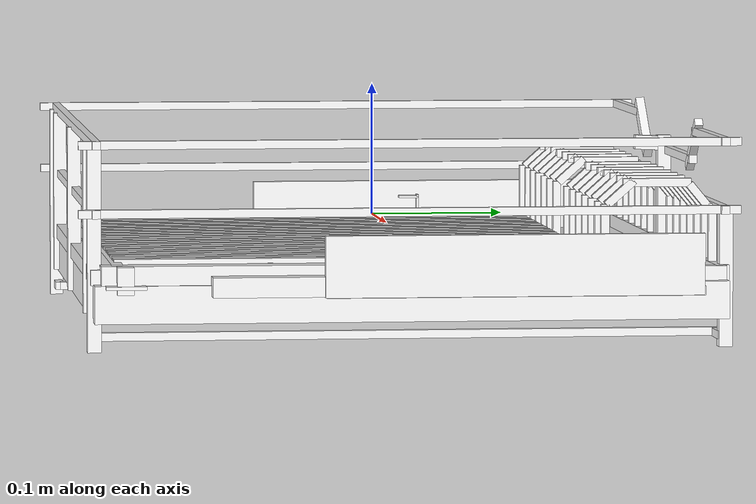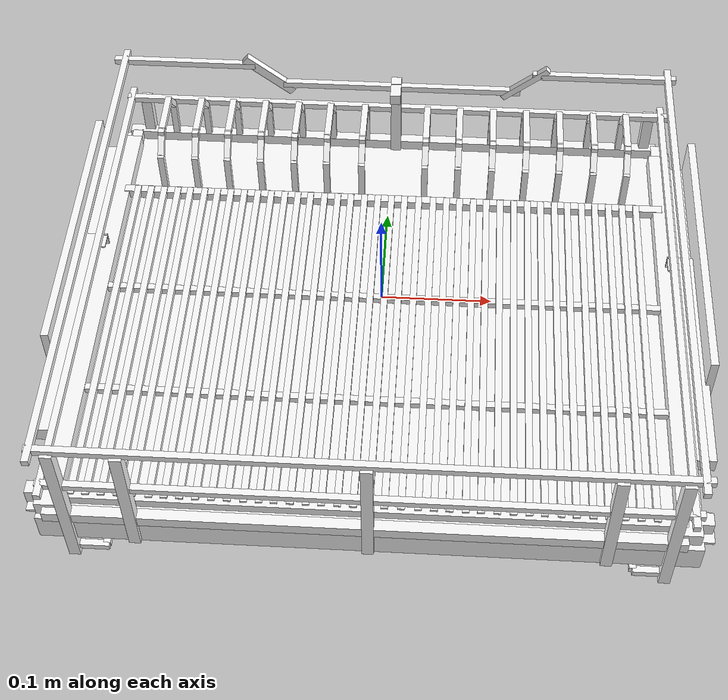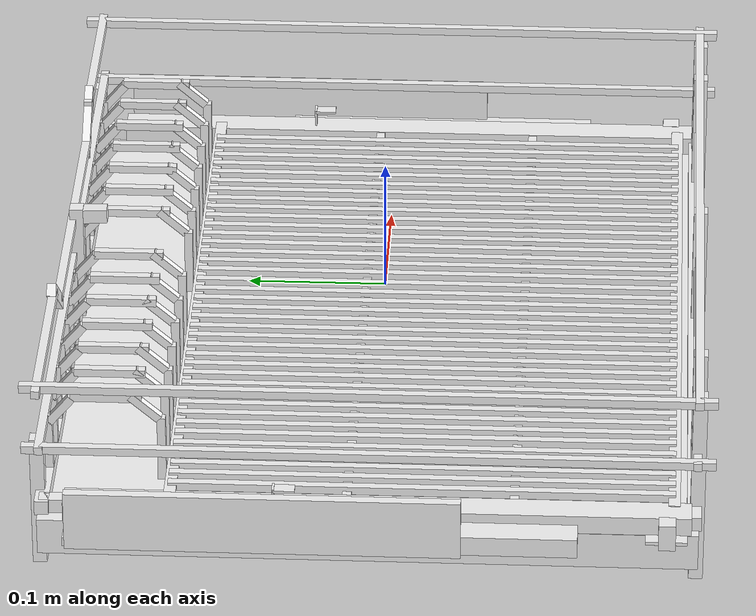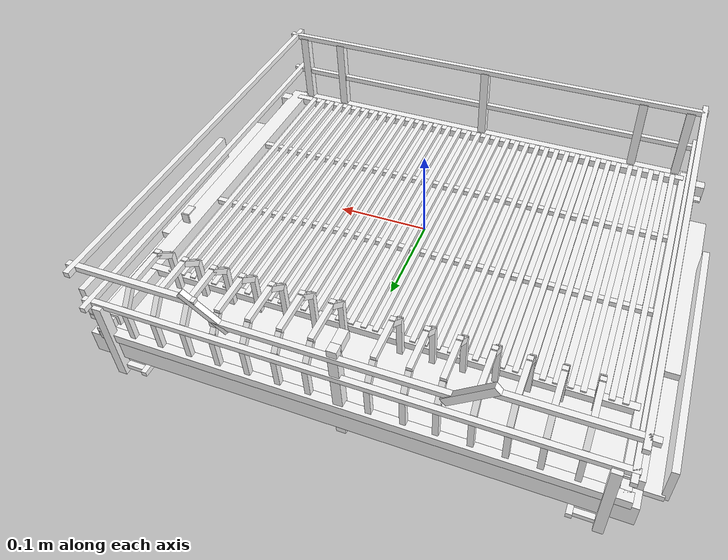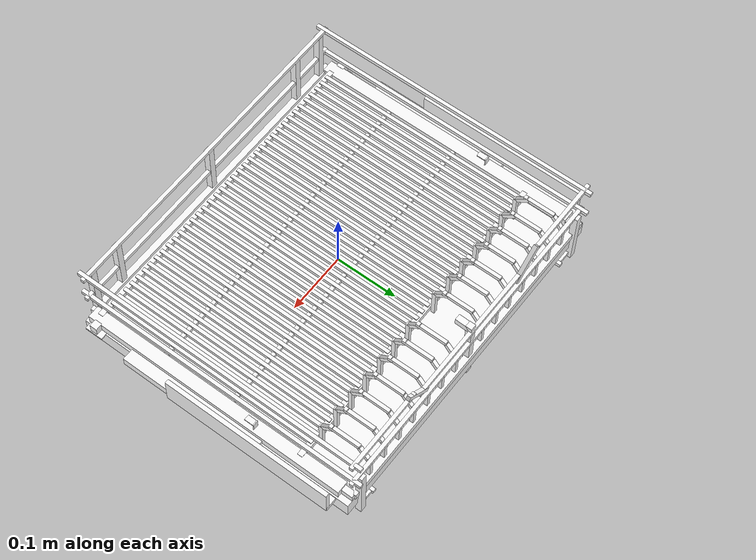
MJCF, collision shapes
<?xml version='1.0' encoding='utf-8'?>
<mujoco model="model">
  <option timestep="0.002" gravity="0.0 0.0 -9.81" />
  <compiler angle="radian" />
  <asset>
    <mesh file="visual/DishRack037.obj" name="DishRack037_vis" />
    <texture file="visual/T_BC001.png" name="DishRack037_material" type="2d" />
    <material name="DishRack037_material" rgba="1 1 1 1.0" texture="DishRack037_material" shininess="0.4472135901451111" specular="0.3103448502657381" />
  </asset>
  <default>
    <default class="visual">
      <geom conaffinity="0" contype="0" group="1" type="mesh" />
    </default>
    <default class="collision">
      <geom group="0" rgba="1 1 1 0.25" density="1.0" solref="0.004 1" solimp="0.998 0.998 0.001" />
    </default>
    <default class="spawn">
      <geom group="0" rgba="1 1 1 0.5" contype="0" conaffinity="0" />
      <site group="0" rgba="1 1 1 0.5" />
    </default>
    <default class="region">
      <geom group="1" conaffinity="0" contype="0" rgba="0 1 0 0" mass="0" />
    </default>
  </default>
  <worldbody>
    <body>
      <body name="object">
        <geom mesh="DishRack037_vis" type="mesh" solimp="0.998 0.998 0.001" solref="0.001 1" friction="0.95 0.3 0.1" class="visual" material="DishRack037_material" />
        <geom type="box" pos="0.00083649 0.00033160 -0.04484896" size="0.27948814630508423 0.2313927561044693 0.013743163086473942" quat="1.0 0.0 0.0 0.0" class="collision" />
        <geom type="box" pos="-0.26806384 -0.00639907 -0.02445450" size="0.010229474864900112 0.21969632804393768 0.007286883424967527" quat="1.0 0.0 0.0 0.0" class="collision" />
        <geom type="box" pos="0.26734287 -0.00639907 -0.02445450" size="0.010229475796222687 0.21969632804393768 0.007286883890628815" quat="1.0 0.0 0.0 0.0" class="collision" />
        <geom type="box" pos="0.28630769 -0.03140605 -0.03163406" size="0.01022955309599638 0.11538941413164139 0.007286883890628815" quat="1.0 0.0 0.0 0.0" class="collision" />
        <geom type="box" pos="-0.28737399 -0.03140605 -0.03163406" size="0.01022955309599638 0.11538941413164139 0.007286884356290102" quat="1.0 0.0 0.0 0.0" class="collision" />
        <geom type="box" pos="-0.28737399 0.07407325 -0.03634763" size="0.01022955309599638 0.1380569487810135 0.0033377723302692175" quat="1.0 0.0 0.0 0.0" class="collision" />
        <geom type="box" pos="-0.29786777 0.07226597 -0.01699529" size="0.003504582680761814 0.13805696368217468 0.02237086370587349" quat="1.0 0.0 0.0 0.0" class="collision" />
        <geom type="box" pos="0.29660746 0.07225426 -0.01699691" size="0.0035354443825781345 0.13805697858333588 0.02231604792177677" quat="1.0 0.0 0.0 0.0" class="collision" />
        <geom type="box" pos="0.28905258 0.07307146 -0.03634763" size="0.010229573585093021 0.13805699348449707 0.0033377730287611485" quat="1.0 0.0 0.0 0.0" class="collision" />
        <geom type="box" pos="0.28296769 -0.20863483 -0.03210286" size="0.0062951394356787205 0.014664098620414734 0.0012474108953028917" quat="1.0 0.0 0.0 0.0" class="collision" />
        <geom type="box" pos="0.28162846 -0.20907026 -0.02707395" size="0.005999957676976919 0.005999957676976919 0.009999999776482582" quat="1.0 0.0 0.0 0.0" class="collision" />
        <geom type="box" pos="-0.28121859 -0.20863483 -0.03210286" size="0.0062951394356787205 0.014664098620414734 0.0012474111281335354" quat="1.0 0.0 0.0 0.0" class="collision" />
        <geom type="box" pos="-0.28255781 -0.20907026 -0.02707395" size="0.0059999581426382065 0.0059999581426382065 0.009999999776482582" quat="1.0 0.0 0.0 0.0" class="collision" />
        <geom type="box" pos="-0.26980966 0.06611580 -0.01176370" size="0.004432574845850468 0.000789379351772368 0.007640306372195482" quat="1.0 0.0 0.0 0.0" class="collision" />
        <geom type="box" pos="-0.26980966 0.05860388 -0.00575532" size="0.004432688467204571 0.007643159478902817 0.000817152438685298" quat="1.0 0.0 0.0 0.0" class="collision" />
        <geom type="box" pos="0.26913095 0.05860388 -0.00575532" size="0.004432688932865858 0.007643159944564104 0.000817152438685298" quat="1.0 0.0 0.0 0.0" class="collision" />
        <geom type="box" pos="0.26913095 0.06611580 -0.01176370" size="0.00443257624283433 0.0007893794681876898 0.0076403082348406315" quat="1.0 0.0 0.0 0.0" class="collision" />
        <geom type="box" pos="0.00145421 -0.03664763 -0.01767052" size="0.003000000026077032 0.17819571495056152 0.003000067314133048" quat="1.0 0.0 0.0 0.0" class="collision" />
        <geom type="box" pos="-0.01181835 -0.03664763 -0.01767052" size="0.003000000026077032 0.17819571495056152 0.0030000668484717607" quat="1.0 0.0 0.0 0.0" class="collision" />
        <geom type="box" pos="-0.02501403 -0.03664763 -0.01767052" size="0.003000000026077032 0.17819571495056152 0.0030000663828104734" quat="1.0 0.0 0.0 0.0" class="collision" />
        <geom type="box" pos="-0.03850293 -0.03664763 -0.01767052" size="0.003000000026077032 0.17819571495056152 0.00300006614997983" quat="1.0 0.0 0.0 0.0" class="collision" />
        <geom type="box" pos="-0.05129403 -0.03664763 -0.01767052" size="0.003000000026077032 0.17819571495056152 0.0030000656843185425" quat="1.0 0.0 0.0 0.0" class="collision" />
        <geom type="box" pos="-0.06444175 -0.03664763 -0.01767052" size="0.003000000026077032 0.17819571495056152 0.003000065451487899" quat="1.0 0.0 0.0 0.0" class="collision" />
        <geom type="box" pos="-0.07820591 -0.03664763 -0.01767052" size="0.003000000026077032 0.17819571495056152 0.0030000649858266115" quat="1.0 0.0 0.0 0.0" class="collision" />
        <geom type="box" pos="-0.09067434 -0.03664763 -0.01767052" size="0.003000000026077032 0.17819571495056152 0.003000064520165324" quat="1.0 0.0 0.0 0.0" class="collision" />
        <geom type="box" pos="-0.10363314 -0.03664763 -0.01767052" size="0.003000000026077032 0.17819571495056152 0.0030000642873346806" quat="1.0 0.0 0.0 0.0" class="collision" />
        <geom type="box" pos="-0.11715781 -0.03664763 -0.01767052" size="0.003000000026077032 0.17819571495056152 0.0030000638216733932" quat="1.0 0.0 0.0 0.0" class="collision" />
        <geom type="box" pos="-0.13048746 -0.03664763 -0.01767052" size="0.003000000026077032 0.17819571495056152 0.0030000635888427496" quat="1.0 0.0 0.0 0.0" class="collision" />
        <geom type="box" pos="-0.14383635 -0.03664763 -0.01767052" size="0.003000000026077032 0.17819571495056152 0.0030000631231814623" quat="1.0 0.0 0.0 0.0" class="collision" />
        <geom type="box" pos="-0.15718885 -0.03664763 -0.01767052" size="0.003000000026077032 0.17819571495056152 0.003000062657520175" quat="1.0 0.0 0.0 0.0" class="collision" />
        <geom type="box" pos="-0.17035304 -0.03664763 -0.01767052" size="0.003000000026077032 0.17819571495056152 0.0030000624246895313" quat="1.0 0.0 0.0 0.0" class="collision" />
        <geom type="box" pos="-0.18307906 -0.03664763 -0.01767052" size="0.003000000026077032 0.17819571495056152 0.003000061959028244" quat="1.0 0.0 0.0 0.0" class="collision" />
        <geom type="box" pos="-0.19740857 -0.03664763 -0.01767052" size="0.003000000026077032 0.17819571495056152 0.0030000617261976004" quat="1.0 0.0 0.0 0.0" class="collision" />
        <geom type="box" pos="-0.20970258 -0.03664763 -0.01767052" size="0.003000000026077032 0.17819571495056152 0.003000061260536313" quat="1.0 0.0 0.0 0.0" class="collision" />
        <geom type="box" pos="-0.22332838 -0.03664763 -0.01767052" size="0.003000000026077032 0.17819571495056152 0.0030000607948750257" quat="1.0 0.0 0.0 0.0" class="collision" />
        <geom type="box" pos="-0.23630084 -0.03664763 -0.01767052" size="0.003000000026077032 0.17819571495056152 0.003000060562044382" quat="1.0 0.0 0.0 0.0" class="collision" />
        <geom type="box" pos="-0.24918747 -0.03664763 -0.01767052" size="0.003000000026077032 0.17819571495056152 0.003000060096383095" quat="1.0 0.0 0.0 0.0" class="collision" />
        <geom type="box" pos="0.01433672 -0.03664763 -0.01767052" size="0.003000000026077032 0.17819571495056152 0.003000059863552451" quat="1.0 0.0 0.0 0.0" class="collision" />
        <geom type="box" pos="0.02827284 -0.03664763 -0.01767052" size="0.003000000026077032 0.17819571495056152 0.003000059397891164" quat="1.0 0.0 0.0 0.0" class="collision" />
        <geom type="box" pos="0.04240493 -0.03664763 -0.01767052" size="0.003000000026077032 0.17819571495056152 0.0030000589322298765" quat="1.0 0.0 0.0 0.0" class="collision" />
        <geom type="box" pos="0.05553933 -0.03664763 -0.01767052" size="0.003000000026077032 0.17819571495056152 0.003000058699399233" quat="1.0 0.0 0.0 0.0" class="collision" />
        <geom type="box" pos="0.06837229 -0.03664763 -0.01767052" size="0.003000000026077032 0.17819571495056152 0.0030000582337379456" quat="1.0 0.0 0.0 0.0" class="collision" />
        <geom type="box" pos="0.08183588 -0.03664763 -0.01767052" size="0.003000000026077032 0.17819571495056152 0.003000058000907302" quat="1.0 0.0 0.0 0.0" class="collision" />
        <geom type="box" pos="0.09453948 -0.03664763 -0.01767052" size="0.003000000026077032 0.17819571495056152 0.0030000575352460146" quat="1.0 0.0 0.0 0.0" class="collision" />
        <geom type="box" pos="0.10799715 -0.03664763 -0.01767052" size="0.003000000026077032 0.17819571495056152 0.0030000570695847273" quat="1.0 0.0 0.0 0.0" class="collision" />
        <geom type="box" pos="0.12149322 -0.03664763 -0.01767052" size="0.003000000026077032 0.17819571495056152 0.0030000568367540836" quat="1.0 0.0 0.0 0.0" class="collision" />
        <geom type="box" pos="0.13474347 -0.03664763 -0.01767052" size="0.003000000026077032 0.17819571495056152 0.0030000563710927963" quat="1.0 0.0 0.0 0.0" class="collision" />
        <geom type="box" pos="0.14741972 -0.03664763 -0.01767052" size="0.003000000026077032 0.17819571495056152 0.0030000561382621527" quat="1.0 0.0 0.0 0.0" class="collision" />
        <geom type="box" pos="0.16112112 -0.03664763 -0.01767052" size="0.003000000026077032 0.17819571495056152 0.0030000556726008654" quat="1.0 0.0 0.0 0.0" class="collision" />
        <geom type="box" pos="0.17361589 -0.03664763 -0.01767052" size="0.003000000026077032 0.17819571495056152 0.003000055206939578" quat="1.0 0.0 0.0 0.0" class="collision" />
        <geom type="box" pos="0.18751633 -0.03664763 -0.01767052" size="0.003000000026077032 0.17819571495056152 0.0030000549741089344" quat="1.0 0.0 0.0 0.0" class="collision" />
        <geom type="box" pos="0.20045196 -0.03664763 -0.01767052" size="0.003000000026077032 0.17819571495056152 0.003000054508447647" quat="1.0 0.0 0.0 0.0" class="collision" />
        <geom type="box" pos="0.21371445 -0.03664763 -0.01767052" size="0.003000000026077032 0.17819571495056152 0.0030000542756170034" quat="1.0 0.0 0.0 0.0" class="collision" />
        <geom type="box" pos="0.22701213 -0.03664763 -0.01767052" size="0.003000000026077032 0.17819571495056152 0.003000053809955716" quat="1.0 0.0 0.0 0.0" class="collision" />
        <geom type="box" pos="0.24048120 -0.03664763 -0.01767052" size="0.003000000026077032 0.17819571495056152 0.003000053344294429" quat="1.0 0.0 0.0 0.0" class="collision" />
        <geom type="box" pos="0.00165363 0.01537802 -0.02102285" size="0.2642967402935028 0.003174195531755686 0.0030000319238752127" quat="1.0 0.0 0.0 0.0" class="collision" />
        <geom type="box" pos="0.00165356 0.13946080 -0.02102285" size="0.26429787278175354 0.004218206275254488 0.004410213325172663" quat="1.0 0.0 0.0 0.0" class="collision" />
        <geom type="box" pos="0.00165356 -0.21397055 -0.02102285" size="0.26429787278175354 0.004218206275254488 0.004410213325172663" quat="1.0 0.0 0.0 0.0" class="collision" />
        <geom type="box" pos="0.00165363 -0.10215501 -0.02102285" size="0.2642967402935028 0.003174195531755686 0.0030000307597219944" quat="1.0 0.0 0.0 0.0" class="collision" />
        <geom type="box" pos="-0.19622105 -0.23004899 0.00566312" size="0.004999999888241291 0.004999999888241291 0.0625419020652771" quat="1.0 0.0 0.0 0.0" class="collision" />
        <geom type="box" pos="0.00148101 -0.23004899 0.00566312" size="0.004999999888241291 0.004999999888241291 0.0625419020652771" quat="1.0 0.0 0.0 0.0" class="collision" />
        <geom type="box" pos="0.20131978 -0.23004899 0.00566312" size="0.004999999888241291 0.004999999888241291 0.0625419020652771" quat="1.0 0.0 0.0 0.0" class="collision" />
        <geom type="box" pos="-0.00277878 -0.22795629 -0.02611899" size="0.2685638666152954 0.004999999888241291 0.005503543186932802" quat="1.0 0.0 0.0 0.0" class="collision" />
        <geom type="box" pos="-0.00277878 0.22885346 -0.02611899" size="0.2685638666152954 0.004999999888241291 0.005503543186932802" quat="1.0 0.0 0.0 0.0" class="collision" />
        <geom type="box" pos="-0.26369911 0.21891043 -0.02611899" size="0.005000022705644369 0.012143490836024284 0.005503544118255377" quat="1.0 0.0 0.0 0.0" class="collision" />
        <geom type="box" pos="0.26572701 0.21891043 -0.02611899" size="0.005000022705644369 0.012143490836024284 0.005503544118255377" quat="1.0 0.0 0.0 0.0" class="collision" />
        <geom type="box" pos="-0.25131088 -0.23004899 -0.00645204" size="0.004999999888241291 0.004999999888241291 0.07465706765651703" quat="1.0 0.0 0.0 0.0" class="collision" />
        <geom type="box" pos="0.25328082 -0.23004899 -0.00645204" size="0.004999999888241291 0.004999999888241291 0.07465706765651703" quat="1.0 0.0 0.0 0.0" class="collision" />
        <geom type="box" pos="0.25328082 0.23256583 -0.03034997" size="0.004999999888241291 0.004999999888241291 0.050759125500917435" quat="1.0 0.0 0.0 0.0" class="collision" />
        <geom type="box" pos="-0.25131088 0.23256583 -0.03034997" size="0.004999999888241291 0.004999999888241291 0.050759125500917435" quat="1.0 0.0 0.0 0.0" class="collision" />
        <geom type="box" pos="-0.22334318 0.00354022 -0.07242790" size="0.003000000026077032 0.2321873903274536 0.003000053809955716" quat="1.0 0.0 0.0 0.0" class="collision" />
        <geom type="box" pos="-0.23492104 -0.22923950 -0.07242790" size="0.014042279683053493 0.003000010037794709 0.0030000258702784777" quat="1.0 0.0 0.0 0.0" class="collision" />
        <geom type="box" pos="-0.23492104 0.22999237 -0.07279268" size="0.014042279683053493 0.003000010037794709 0.0030000254046171904" quat="1.0 0.0 0.0 0.0" class="collision" />
        <geom type="box" pos="0.24178319 0.22999237 -0.07279268" size="0.014042279683053493 0.003000010037794709 0.0030000251717865467" quat="1.0 0.0 0.0 0.0" class="collision" />
        <geom type="box" pos="0.23948266 -0.22923950 -0.07242790" size="0.014042279683053493 0.003000010037794709 0.0030000247061252594" quat="1.0 0.0 0.0 0.0" class="collision" />
        <geom type="box" pos="0.22595520 0.00354022 -0.07242790" size="0.003000000026077032 0.2321873903274536 0.003000051947310567" quat="1.0 0.0 0.0 0.0" class="collision" />
        <geom type="box" pos="0.00148101 0.22654846 -0.00323607" size="0.004999999888241291 0.004999999888241291 0.0625419020652771" quat="1.0 0.0 0.0 0.0" class="collision" />
        <geom type="box" pos="0.00148101 0.21717476 0.05351009" size="0.004999999888241291 0.005332586821168661 0.013147068209946156" quat="0.7223259210586548 0.6915528178215027 0.0 0.0" class="collision" />
        <geom type="box" pos="0.00156875 0.22988611 0.01999580" size="0.27102500200271606 0.0030000079423189163 0.003000023774802685" quat="1.0 0.0 0.0 0.0" class="collision" />
        <geom type="box" pos="0.26486763 0.00005241 0.01999580" size="0.003000035183504224 0.24203164875507355 0.0030000521801412106" quat="1.0 0.0 0.0 0.0" class="collision" />
        <geom type="box" pos="0.00156875 -0.22916476 0.01999580" size="0.27102500200271606 0.0030000079423189163 0.003000023076310754" quat="1.0 0.0 0.0 0.0" class="collision" />
        <geom type="box" pos="-0.26533794 0.00005241 0.01999580" size="0.003000035183504224 0.24203164875507355 0.0030000514816492796" quat="1.0 0.0 0.0 0.0" class="collision" />
        <geom type="box" pos="-0.26533794 0.00005241 0.06979850" size="0.003000035183504224 0.24203164875507355 0.0030000510159879923" quat="1.0 0.0 0.0 0.0" class="collision" />
        <geom type="box" pos="0.00156875 -0.22916476 0.06979850" size="0.27102500200271606 0.0030000079423189163 0.0030000219121575356" quat="1.0 0.0 0.0 0.0" class="collision" />
        <geom type="box" pos="0.26486763 0.00005241 0.06979850" size="0.003000035183504224 0.24203164875507355 0.0030000503174960613" quat="1.0 0.0 0.0 0.0" class="collision" />
        <geom type="box" pos="0.20337819 0.22988611 0.06979850" size="0.0692155584692955 0.0030000079423189163 0.003000020980834961" quat="1.0 0.0 0.0 0.0" class="collision" />
        <geom type="box" pos="-0.20642088 0.22988611 0.06979850" size="0.0692155584692955 0.0030000079423189163 0.0030000207480043173" quat="1.0 0.0 0.0 0.0" class="collision" />
        <geom type="box" pos="0.12751098 0.22988611 0.05931698" size="0.0030000072438269854 0.003130533266812563 0.028069866821169853" quat="0.6422461271286011 -0.2958376407623291 0.2958376705646515 -0.6422461271286011" class="collision" />
        <geom type="box" pos="-0.12390412 0.23048226 0.05827304" size="0.00331965577788651 0.004595246631652117 0.029828185215592384" quat="0.6403205394744873 0.29998263716697693 -0.2999826669692993 -0.6403205394744873" class="collision" />
        <geom type="box" pos="0.00643073 0.22988611 0.04796056" size="0.11692282557487488 0.0030000079423189163 0.0030000200495123863" quat="1.0 0.0 0.0 0.0" class="collision" />
        <geom type="box" pos="-0.22367559 0.14735072 -0.00323607" size="0.002987904939800501 0.002987904939800501 0.02518325112760067" quat="1.0 0.0 0.0 0.0" class="collision" />
        <geom type="box" pos="-0.22367559 0.22712102 -0.00323607" size="0.0029879051726311445 0.0029879051726311445 0.02518325485289097" quat="1.0 0.0 0.0 0.0" class="collision" />
        <geom type="box" pos="-0.22367559 0.18604372 0.03769956" size="0.0029879051726311445 0.025183241814374924 0.0029879044741392136" quat="1.0 0.0 0.0 0.0" class="collision" />
        <geom type="box" pos="-0.22367559 0.15871274 0.03014906" size="0.002987912157550454 0.002987912390381098 0.013440613634884357" quat="0.4087851345539093 0.9126306772232056 0.0 0.0" class="collision" />
        <geom type="box" pos="-0.22367559 0.21865936 0.02593267" size="0.002987912157550454 0.0029879119247198105 0.013440614566206932" quat="0.33872848749160767 -0.9408841729164124 -0.0 0.0" class="collision" />
        <geom type="box" pos="-0.19048312 0.21865936 0.02593267" size="0.002987912157550454 0.0029879119247198105 0.013440614566206932" quat="0.33872848749160767 -0.9408841729164124 -0.0 0.0" class="collision" />
        <geom type="box" pos="-0.19048312 0.15871274 0.03014906" size="0.002987912157550454 0.002987912390381098 0.013440613634884357" quat="0.4087851345539093 0.9126306772232056 0.0 0.0" class="collision" />
        <geom type="box" pos="-0.19048312 0.18604372 0.03769956" size="0.002987905405461788 0.025183243677020073 0.002987904706969857" quat="1.0 0.0 0.0 0.0" class="collision" />
        <geom type="box" pos="-0.19048312 0.22712102 -0.00323607" size="0.002987905638292432 0.002987905638292432 0.025183262303471565" quat="1.0 0.0 0.0 0.0" class="collision" />
        <geom type="box" pos="-0.19048312 0.14735072 -0.00323607" size="0.0029879058711230755 0.0029879058711230755 0.025183264166116714" quat="1.0 0.0 0.0 0.0" class="collision" />
        <geom type="box" pos="-0.15896690 0.21865936 0.02593267" size="0.002987912157550454 0.0029879119247198105 0.013440614566206932" quat="0.33872848749160767 -0.9408841729164124 -0.0 0.0" class="collision" />
        <geom type="box" pos="-0.15896690 0.15871274 0.03014906" size="0.002987912157550454 0.002987912390381098 0.013440613634884357" quat="0.4087851345539093 0.9126306772232056 0.0 0.0" class="collision" />
        <geom type="box" pos="-0.15896690 0.18604372 0.03769956" size="0.0029879058711230755 0.02518325299024582 0.002987905638292432" quat="1.0 0.0 0.0 0.0" class="collision" />
        <geom type="box" pos="-0.15896690 0.22712102 -0.00323607" size="0.002987906103953719 0.002987906103953719 0.025183267891407013" quat="1.0 0.0 0.0 0.0" class="collision" />
        <geom type="box" pos="-0.15896690 0.14735072 -0.00323607" size="0.002987906336784363 0.002987906336784363 0.02518327161669731" quat="1.0 0.0 0.0 0.0" class="collision" />
        <geom type="box" pos="-0.12662128 0.14735072 -0.00323607" size="0.0029879065696150064 0.0029879065696150064 0.02518327347934246" quat="1.0 0.0 0.0 0.0" class="collision" />
        <geom type="box" pos="-0.12662128 0.22712102 -0.00323607" size="0.00298790680244565 0.00298790680244565 0.02518327534198761" quat="1.0 0.0 0.0 0.0" class="collision" />
        <geom type="box" pos="-0.12662128 0.18604372 0.03769956" size="0.00298790680244565 0.025183266028761864 0.0029879072681069374" quat="1.0 0.0 0.0 0.0" class="collision" />
        <geom type="box" pos="-0.12662128 0.15871274 0.03014906" size="0.002987912157550454 0.002987912390381098 0.013440613634884357" quat="0.4087851345539093 0.9126306772232056 0.0 0.0" class="collision" />
        <geom type="box" pos="-0.12662128 0.21865936 0.02593267" size="0.002987912157550454 0.0029879119247198105 0.013440614566206932" quat="0.33872848749160767 -0.9408841729164124 -0.0 0.0" class="collision" />
        <geom type="box" pos="-0.09390564 0.21865936 0.02593267" size="0.002987912157550454 0.0029879119247198105 0.013440614566206932" quat="0.33872848749160767 -0.9408841729164124 -0.0 0.0" class="collision" />
        <geom type="box" pos="-0.09390564 0.15871274 0.03014906" size="0.002987912157550454 0.002987912390381098 0.013440613634884357" quat="0.4087851345539093 0.9126306772232056 0.0 0.0" class="collision" />
        <geom type="box" pos="-0.09390564 0.18604372 0.03769956" size="0.0029879070352762938 0.025183269754052162 0.002987907500937581" quat="1.0 0.0 0.0 0.0" class="collision" />
        <geom type="box" pos="-0.09390564 0.22712102 -0.00323607" size="0.0029879072681069374 0.0029879072681069374 0.025183282792568207" quat="1.0 0.0 0.0 0.0" class="collision" />
        <geom type="box" pos="-0.09390564 0.14735072 -0.00323607" size="0.002987907500937581 0.002987907500937581 0.025183284655213356" quat="1.0 0.0 0.0 0.0" class="collision" />
        <geom type="box" pos="-0.06235021 0.14735072 -0.00323607" size="0.002987907500937581 0.002987907500937581 0.025183288380503654" quat="1.0 0.0 0.0 0.0" class="collision" />
        <geom type="box" pos="-0.06235021 0.22712102 -0.00323607" size="0.0029879077337682247 0.0029879077337682247 0.025183290243148804" quat="1.0 0.0 0.0 0.0" class="collision" />
        <geom type="box" pos="-0.06235021 0.18604372 0.03769956" size="0.0029879079665988684 0.025183284655213356 0.002987908897921443" quat="1.0 0.0 0.0 0.0" class="collision" />
        <geom type="box" pos="-0.06235021 0.15871274 0.03014906" size="0.002987912157550454 0.002987912390381098 0.013440613634884357" quat="0.4087851345539093 0.9126306772232056 0.0 0.0" class="collision" />
        <geom type="box" pos="-0.06235021 0.21865936 0.02593267" size="0.002987912157550454 0.0029879119247198105 0.013440614566206932" quat="0.33872848749160767 -0.9408841729164124 -0.0 0.0" class="collision" />
        <geom type="box" pos="-0.02825914 0.21865936 0.02593267" size="0.002987912157550454 0.0029879119247198105 0.013440614566206932" quat="0.33872848749160767 -0.9408841729164124 -0.0 0.0" class="collision" />
        <geom type="box" pos="-0.02825914 0.15871274 0.03014906" size="0.002987912157550454 0.002987912390381098 0.013440613634884357" quat="0.4087851345539093 0.9126306772232056 0.0 0.0" class="collision" />
        <geom type="box" pos="-0.02825914 0.18604372 0.03769956" size="0.002987908199429512 0.025183286517858505 0.0029879093635827303" quat="1.0 0.0 0.0 0.0" class="collision" />
        <geom type="box" pos="-0.02825914 0.22712102 -0.00323607" size="0.002987908199429512 0.002987908199429512 0.0251832976937294" quat="1.0 0.0 0.0 0.0" class="collision" />
        <geom type="box" pos="-0.02825914 0.14735072 -0.00323607" size="0.0029879084322601557 0.0029879084322601557 0.02518329955637455" quat="1.0 0.0 0.0 0.0" class="collision" />
        <geom type="box" pos="0.03310584 0.14735072 -0.00323607" size="0.0029879086650907993 0.0029879086650907993 0.0251833014190197" quat="1.0 0.0 0.0 0.0" class="collision" />
        <geom type="box" pos="0.03310584 0.22712102 -0.00323607" size="0.002987908897921443 0.002987908897921443 0.025183305144309998" quat="1.0 0.0 0.0 0.0" class="collision" />
        <geom type="box" pos="0.03310584 0.18604372 0.03769956" size="0.002987908897921443 0.0251833014190197 0.002987910760566592" quat="1.0 0.0 0.0 0.0" class="collision" />
        <geom type="box" pos="0.03310584 0.15871274 0.03014906" size="0.002987912157550454 0.002987912390381098 0.013440613634884357" quat="0.4087851345539093 0.9126306772232056 0.0 0.0" class="collision" />
        <geom type="box" pos="0.03310584 0.21865936 0.02593267" size="0.002987912157550454 0.0029879119247198105 0.013440614566206932" quat="0.33872848749160767 -0.9408841729164124 -0.0 0.0" class="collision" />
        <geom type="box" pos="0.06514771 0.21865936 0.02593267" size="0.002987912157550454 0.0029879119247198105 0.013440614566206932" quat="0.33872848749160767 -0.9408841729164124 -0.0 0.0" class="collision" />
        <geom type="box" pos="0.06514771 0.15871274 0.03014906" size="0.002987912157550454 0.002987912390381098 0.013440613634884357" quat="0.4087851345539093 0.9126306772232056 0.0 0.0" class="collision" />
        <geom type="box" pos="0.06514771 0.18604372 0.03769956" size="0.0029879091307520866 0.02518330328166485 0.002987910993397236" quat="1.0 0.0 0.0 0.0" class="collision" />
        <geom type="box" pos="0.06514771 0.22712102 -0.00323607" size="0.0029879093635827303 0.0029879093635827303 0.025183312594890594" quat="1.0 0.0 0.0 0.0" class="collision" />
        <geom type="box" pos="0.06514771 0.14735072 -0.00323607" size="0.002987909596413374 0.002987909596413374 0.025183314457535744" quat="1.0 0.0 0.0 0.0" class="collision" />
        <geom type="box" pos="0.09776701 0.14735072 -0.00323607" size="0.0029879098292440176 0.0029879098292440176 0.025183316320180893" quat="1.0 0.0 0.0 0.0" class="collision" />
        <geom type="box" pos="0.09776701 0.22712102 -0.00323607" size="0.0029879098292440176 0.0029879098292440176 0.025183318182826042" quat="1.0 0.0 0.0 0.0" class="collision" />
        <geom type="box" pos="0.09776701 0.18604372 0.03769956" size="0.0029879100620746613 0.025183318182826042 0.0029879126232117414" quat="1.0 0.0 0.0 0.0" class="collision" />
        <geom type="box" pos="0.09776701 0.15871274 0.03014906" size="0.002987912157550454 0.002987912390381098 0.013440613634884357" quat="0.4087851345539093 0.9126306772232056 0.0 0.0" class="collision" />
        <geom type="box" pos="0.09776701 0.21865936 0.02593267" size="0.002987912157550454 0.0029879119247198105 0.013440614566206932" quat="0.33872848749160767 -0.9408841729164124 -0.0 0.0" class="collision" />
        <geom type="box" pos="0.13019076 0.21865936 0.02593267" size="0.002987912157550454 0.0029879119247198105 0.013440614566206932" quat="0.33872848749160767 -0.9408841729164124 -0.0 0.0" class="collision" />
        <geom type="box" pos="0.13019076 0.15871274 0.03014906" size="0.002987912157550454 0.002987912390381098 0.013440613634884357" quat="0.4087851345539093 0.9126306772232056 0.0 0.0" class="collision" />
        <geom type="box" pos="0.13019076 0.18604372 0.03769956" size="0.002987910294905305 0.02518332004547119 0.002987912856042385" quat="1.0 0.0 0.0 0.0" class="collision" />
        <geom type="box" pos="0.13019076 0.22712102 -0.00323607" size="0.0029879105277359486 0.0029879105277359486 0.02518332563340664" quat="1.0 0.0 0.0 0.0" class="collision" />
        <geom type="box" pos="0.13019076 0.14735072 -0.00323607" size="0.0029879105277359486 0.0029879105277359486 0.025183329358696938" quat="1.0 0.0 0.0 0.0" class="collision" />
        <geom type="box" pos="0.16247451 0.14735072 -0.00323607" size="0.002987910760566592 0.002987910760566592 0.025183331221342087" quat="1.0 0.0 0.0 0.0" class="collision" />
        <geom type="box" pos="0.16247451 0.22712102 -0.00323607" size="0.002987910993397236 0.002987910993397236 0.025183333083987236" quat="1.0 0.0 0.0 0.0" class="collision" />
        <geom type="box" pos="0.16247451 0.18604372 0.03769956" size="0.0029879112262278795 0.025183334946632385 0.0029879144858568907" quat="1.0 0.0 0.0 0.0" class="collision" />
        <geom type="box" pos="0.16247451 0.15871274 0.03014906" size="0.002987912157550454 0.002987912390381098 0.013440613634884357" quat="0.4087851345539093 0.9126306772232056 0.0 0.0" class="collision" />
        <geom type="box" pos="0.16247451 0.21865936 0.02593267" size="0.002987912157550454 0.0029879119247198105 0.013440614566206932" quat="0.33872848749160767 -0.9408841729164124 -0.0 0.0" class="collision" />
        <geom type="box" pos="0.19531232 0.21865936 0.02593267" size="0.002987912157550454 0.0029879119247198105 0.013440614566206932" quat="0.33872848749160767 -0.9408841729164124 -0.0 0.0" class="collision" />
        <geom type="box" pos="0.19531232 0.15871274 0.03014906" size="0.002987912157550454 0.002987912390381098 0.013440613634884357" quat="0.4087851345539093 0.9126306772232056 0.0 0.0" class="collision" />
        <geom type="box" pos="0.19531232 0.18604372 0.03769956" size="0.0029879112262278795 0.025183338671922684 0.0029879147186875343" quat="1.0 0.0 0.0 0.0" class="collision" />
        <geom type="box" pos="0.19531232 0.22712102 -0.00323607" size="0.002987911459058523 0.002987911459058523 0.025183340534567833" quat="1.0 0.0 0.0 0.0" class="collision" />
        <geom type="box" pos="0.19531232 0.14735072 -0.00323607" size="0.002987911691889167 0.002987911691889167 0.025183342397212982" quat="1.0 0.0 0.0 0.0" class="collision" />
        <geom type="box" pos="0.22731844 0.14735072 -0.00323607" size="0.0029879119247198105 0.0029879119247198105 0.02518334612250328" quat="1.0 0.0 0.0 0.0" class="collision" />
        <geom type="box" pos="0.22731844 0.22712102 -0.00323607" size="0.0029879119247198105 0.0029879119247198105 0.02518334798514843" quat="1.0 0.0 0.0 0.0" class="collision" />
        <geom type="box" pos="0.22731844 0.18604372 0.03769956" size="0.002987912157550454 0.02518335171043873 0.0029879161156713963" quat="1.0 0.0 0.0 0.0" class="collision" />
        <geom type="box" pos="0.22731844 0.15871274 0.03014906" size="0.002987912157550454 0.002987912390381098 0.013440613634884357" quat="0.4087851345539093 0.9126306772232056 0.0 0.0" class="collision" />
        <geom type="box" pos="0.22731844 0.21865936 0.02593267" size="0.002987912157550454 0.0029879119247198105 0.013440614566206932" quat="0.33872848749160767 -0.9408841729164124 -0.0 0.0" class="collision" />
        <geom class="region" name="reg_int_0" type="box" pos="0.0012882949999999949 -0.03982836000000001 0.082782935" size="0.260265815 0.18477704 0.09783293500000001" />
        <geom size="0.30156051 0.235504395 0.07754413" pos="-0.0 0.0 0.0" name="reg_bbox" class="region" type="box" quat="1.0 0.0 0.0 0.0" />
        </body>
    </body>
  </worldbody>
  <actuator />
</mujoco>
